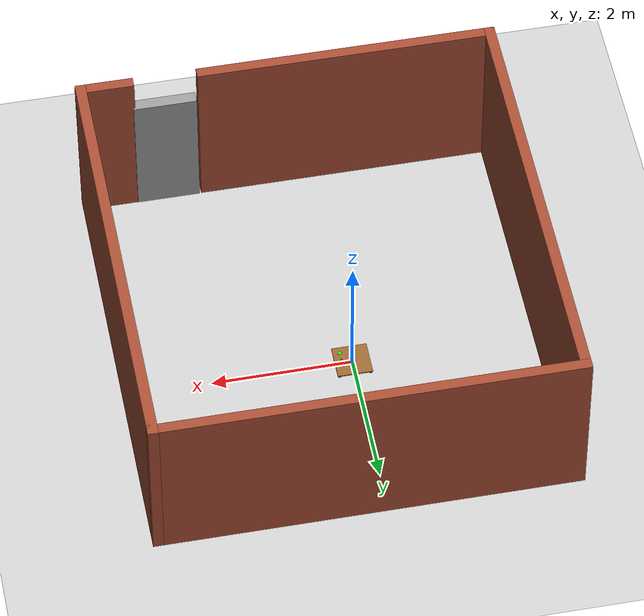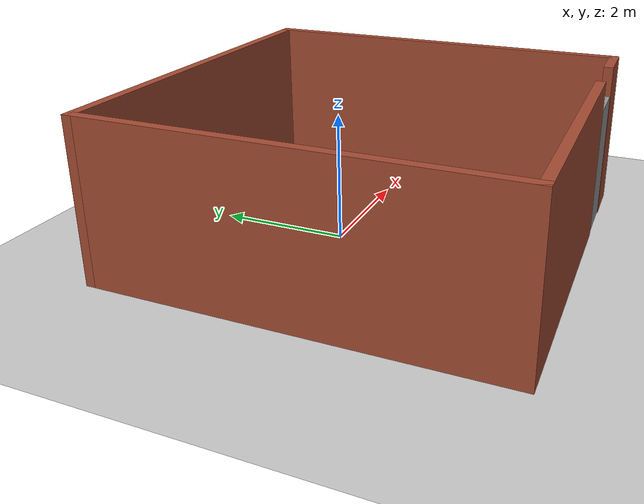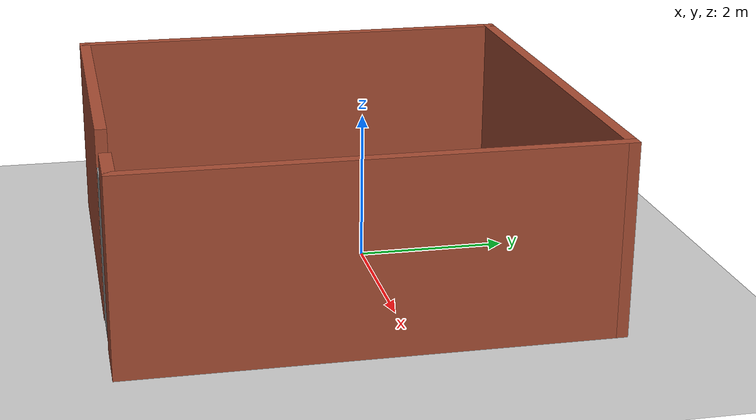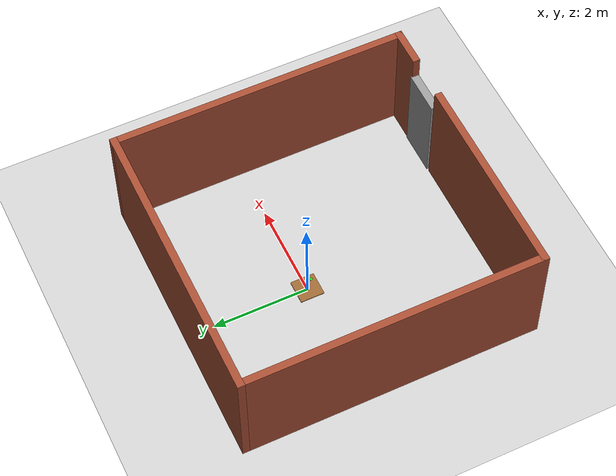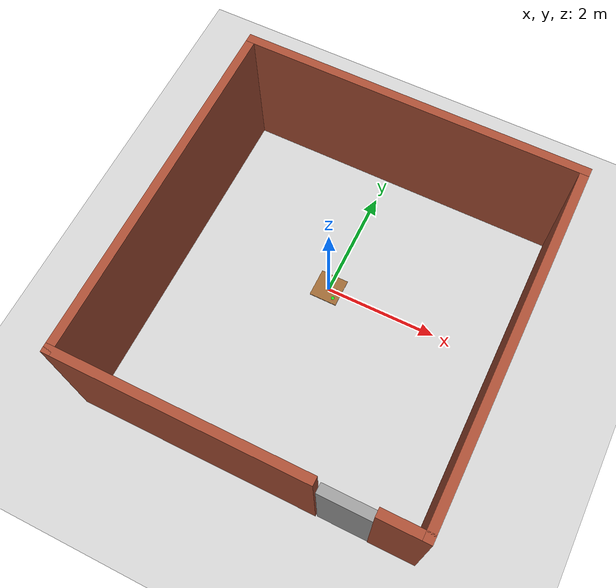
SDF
<sdf version='1.7'>
  <world name='default'>
    <light name='sun' type='directional'>
      <cast_shadows>1</cast_shadows>
      <pose>0 0 10 0 -0 0</pose>
      <diffuse>0.8 0.8 0.8 1</diffuse>
      <specular>0.2 0.2 0.2 1</specular>
      <attenuation>
        <range>1000</range>
        <constant>0.9</constant>
        <linear>0.01</linear>
        <quadratic>0.001</quadratic>
      </attenuation>
      <direction>-0.5 0.1 -0.9</direction>
    </light>

    <model name='ground_plane'>
      <static>1</static>
      <link name='link'>
        <collision name='collision'>
          <geometry>
            <plane>
              <normal>0 0 1</normal>
              <size>100 100</size>
            </plane>
          </geometry>
          <surface>
            <friction>
              <ode>
                <mu>100</mu>
                <mu2>50</mu2>
              </ode>
            </friction>
          </surface>
        </collision>
        <visual name='visual'>
          <cast_shadows>0</cast_shadows>
          <geometry>
            <plane>
              <normal>0 0 1</normal>
              <size>100 100</size>
            </plane>
          </geometry>
          <material>
            <script>
              <uri>file://media/materials/scripts/gazebo.material</uri>
              <name>Gazebo/Grey</name>
            </script>
          </material>
        </visual>
      </link>
    </model>

    <gravity>0 0 -9.8</gravity>
    <physics type='ode'>
      <max_step_size>0.001</max_step_size>
      <real_time_factor>1</real_time_factor>
      <real_time_update_rate>1000</real_time_update_rate>
      <ode>
        <solver>
          <type>world</type>
          <iters>80</iters>
          <sor>1.0</sor>
        </solver>
        <constraints>
          <cfm>0.00001</cfm>
          <erp>0.2</erp>
          <contact_max_correcting_vel>100.0</contact_max_correcting_vel>
          <contact_surface_layer>0.0005</contact_surface_layer>
        </constraints>
      </ode>
    </physics>

    <scene>
      <ambient>0.4 0.4 0.4 1</ambient>
      <background>0.7 0.7 0.7 1</background>
      <shadows>1</shadows>
    </scene>

    <plugin name="gazebo_ros_state" filename="libgazebo_ros_state.so">
      <ros>
        <namespace>/</namespace>
      </ros>
      <update_rate>50</update_rate>
    </plugin>

    <!-- Walls (Room) -->
    <model name='room_walls'>
      <pose>-2.8231 -0.802565 0 0 0 0</pose>
      <static>1</static>
      <link name='Wall_17'>
        <collision name='Wall_17_Collision'>
          <geometry><box><size>6.25 0.15 2.5</size></box></geometry>
          <pose>0 0 1.25 0 0 0</pose>
        </collision>
        <visual name='Wall_17_Visual'>
          <pose>0 0 1.25 0 0 0</pose>
          <geometry><box><size>6.25 0.15 2.5</size></box></geometry>
          <material>
            <script>
              <uri>file://media/materials/scripts/gazebo.material</uri>
              <name>Gazebo/Bricks</name>
            </script>
          </material>
        </visual>
        <pose>0.155872 0.298732 0 0 0 -1.5708</pose>
      </link>
      <link name='Wall_18'>
        <pose>3.08087 -2.75127 0 0 0 0</pose>
        <visual name='Wall_18_Visual_0'>
          <pose>-0.860141 0 1.25 0 0 0</pose>
          <geometry><box><size>4.27972 0.15 2.5</size></box></geometry>
          <material>
            <script>
              <uri>file://media/materials/scripts/gazebo.material</uri>
              <name>Gazebo/Bricks</name>
            </script>
          </material>
        </visual>
        <collision name='Wall_18_Collision_0'>
          <geometry><box><size>4.27972 0.15 2.5</size></box></geometry>
          <pose>-0.860141 0 1.25 0 0 0</pose>
        </collision>
        <visual name='Wall_18_Visual_1'>
          <pose>2.58986 0 1.25 0 0 0</pose>
          <geometry><box><size>0.820282 0.15 2.5</size></box></geometry>
          <material>
            <script>
              <uri>file://media/materials/scripts/gazebo.material</uri>
              <name>Gazebo/Bricks</name>
            </script>
          </material>
        </visual>
        <collision name='Wall_18_Collision_1'>
          <geometry><box><size>0.820282 0.15 2.5</size></box></geometry>
          <pose>2.58986 0 1.25 0 0 0</pose>
        </collision>
      </link>
      <link name='Wall_19'>
        <collision name='Wall_19_Collision'>
          <geometry><box><size>6.25 0.15 2.5</size></box></geometry>
          <pose>0 0 1.25 0 0 0</pose>
        </collision>
        <visual name='Wall_19_Visual'>
          <pose>0 0 1.25 0 0 0</pose>
          <geometry><box><size>6.25 0.15 2.5</size></box></geometry>
          <material>
            <script>
              <uri>file://media/materials/scripts/gazebo.material</uri>
              <name>Gazebo/Bricks</name>
            </script>
          </material>
        </visual>
        <pose>6.00587 0.298732 0 0 0 1.5708</pose>
      </link>
      <link name='Wall_20'>
        <collision name='Wall_20_Collision'>
          <geometry><box><size>6 0.15 2.5</size></box></geometry>
          <pose>0 0 1.25 0 0 0</pose>
        </collision>
        <visual name='Wall_20_Visual'>
          <pose>0 0 1.25 0 0 0</pose>
          <geometry><box><size>6 0.15 2.5</size></box></geometry>
          <material>
            <script>
              <uri>file://media/materials/scripts/gazebo.material</uri>
              <name>Gazebo/Bricks</name>
            </script>
          </material>
        </visual>
        <pose>3.08087 3.34873 0 0 0 3.14159</pose>
      </link>
    </model>

    <!-- Door -->
    <model name='door_model'>
      <pose>-0.71664 2.7166 0.026996 0 0 0</pose>
      <static>1</static>
      <link name='Door_1'>
        <collision name='Door_1_Collision'>
          <geometry><box><size>0.9 0.17 2</size></box></geometry>
          <pose>0 0 1 0 0 0</pose>
        </collision>
        <visual name='Door_1_Visual'>
          <pose>0 0 1 0 0 0</pose>
          <geometry><box><size>0.9 0.17 2</size></box></geometry>
          <material>
            <script>
              <uri>file://media/materials/scripts/gazebo.material</uri>
              <name>Gazebo/Grey</name>
            </script>
          </material>
        </visual>
        <pose>2.72983 -6.25268 0 0 0 0</pose>
      </link>
    </model>

    <!-- Table for the robot (raises robot to working height) -->
    <model name='robot_table'>
      <static>1</static>
      <pose>0.0 0.0 0.0 0 0 0</pose>
      <link name='table_link'>
        <!-- Table top -->
        <visual name='table_top_visual'>
          <pose>0 0 0.05 0 0 0</pose>
          <geometry><box><size>0.5 0.5 0.02</size></box></geometry>
          <material>
            <ambient>0.6 0.4 0.2 1</ambient>
            <diffuse>0.6 0.4 0.2 1</diffuse>
          </material>
        </visual>
        <collision name='table_top_collision'>
          <pose>0 0 0.05 0 0 0</pose>
          <geometry><box><size>0.5 0.5 0.02</size></box></geometry>
        </collision>
        <!-- Leg 1 -->
        <visual name='leg1_visual'>
          <pose>0.22 0.22 0.025 0 0 0</pose>
          <geometry><box><size>0.03 0.03 0.04</size></box></geometry>
          <material><ambient>0.4 0.3 0.15 1</ambient></material>
        </visual>
        <collision name='leg1_col'>
          <pose>0.22 0.22 0.025 0 0 0</pose>
          <geometry><box><size>0.03 0.03 0.04</size></box></geometry>
        </collision>
        <!-- Leg 2 -->
        <visual name='leg2_visual'>
          <pose>-0.22 0.22 0.025 0 0 0</pose>
          <geometry><box><size>0.03 0.03 0.04</size></box></geometry>
          <material><ambient>0.4 0.3 0.15 1</ambient></material>
        </visual>
        <collision name='leg2_col'>
          <pose>-0.22 0.22 0.025 0 0 0</pose>
          <geometry><box><size>0.03 0.03 0.04</size></box></geometry>
        </collision>
        <!-- Leg 3 -->
        <visual name='leg3_visual'>
          <pose>0.22 -0.22 0.025 0 0 0</pose>
          <geometry><box><size>0.03 0.03 0.04</size></box></geometry>
          <material><ambient>0.4 0.3 0.15 1</ambient></material>
        </visual>
        <collision name='leg3_col'>
          <pose>0.22 -0.22 0.025 0 0 0</pose>
          <geometry><box><size>0.03 0.03 0.04</size></box></geometry>
        </collision>
        <!-- Leg 4 -->
        <visual name='leg4_visual'>
          <pose>-0.22 -0.22 0.025 0 0 0</pose>
          <geometry><box><size>0.03 0.03 0.04</size></box></geometry>
          <material><ambient>0.4 0.3 0.15 1</ambient></material>
        </visual>
        <collision name='leg4_col'>
          <pose>-0.22 -0.22 0.025 0 0 0</pose>
          <geometry><box><size>0.03 0.03 0.04</size></box></geometry>
        </collision>
      </link>
    </model>

    <!-- Target box (unit_box_0) - small graspable object on the table -->
    <model name='unit_box_0'>
      <pose>0.15 0.0 0.08 0 0 0</pose>
      <link name='link'>
        <inertial>
          <mass>0.05</mass>
          <inertia>
            <ixx>0.0000042</ixx><ixy>0</ixy><ixz>0</ixz>
            <iyy>0.0000035</iyy><iyz>0</iyz>
            <izz>0.0000022</izz>
          </inertia>
        </inertial>
        <collision name='collision'>
          <max_contacts>8</max_contacts>
          <geometry><box><size>0.021 0.032 0.040</size></box></geometry>
          <surface>
            <friction>
              <ode><mu>80.0</mu><mu2>80.0</mu2></ode>
              <torsional>
                <coefficient>10.0</coefficient>
              </torsional>
            </friction>
            <contact>
              <ode>
                <kp>500000</kp><kd>50</kd>
                <max_vel>0.0</max_vel>
                <min_depth>0.0003</min_depth>
                <soft_cfm>0.0001</soft_cfm>
                <soft_erp>0.8</soft_erp>
              </ode>
            </contact>
          </surface>
        </collision>
        <visual name='visual'>
          <geometry><box><size>0.021 0.032 0.040</size></box></geometry>
          <material>
            <ambient>0.9 0.2 0.2 1</ambient>
            <diffuse>0.9 0.2 0.2 1</diffuse>
          </material>
        </visual>
      </link>
    </model>

    <!-- Drop location marker -->
    <model name='drop_marker'>
      <static>1</static>
      <pose>0.15 -0.15 0.061 0 0 0</pose>
      <link name='link'>
        <visual name='visual'>
          <geometry><cylinder><radius>0.03</radius><length>0.002</length></cylinder></geometry>
          <material>
            <ambient>0.1 0.9 0.1 1</ambient>
            <diffuse>0.1 0.9 0.1 1</diffuse>
          </material>
        </visual>
      </link>
    </model>

    <gui fullscreen='0'>
      <camera name='user_camera'>
        <pose>0.5 -0.5 0.5 0 0.5 2.3</pose>
        <view_controller>orbit</view_controller>
      </camera>
    </gui>
  </world>
</sdf>
